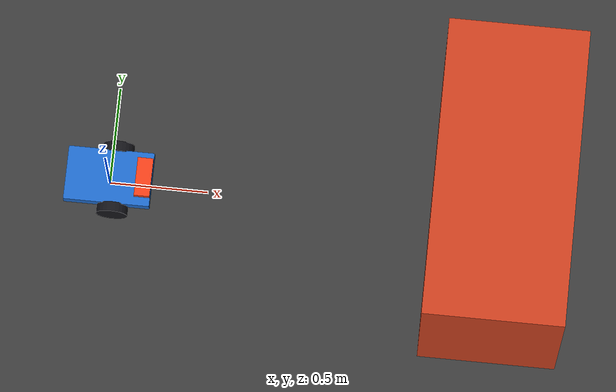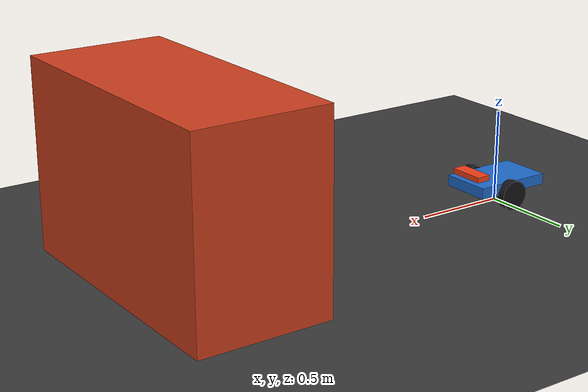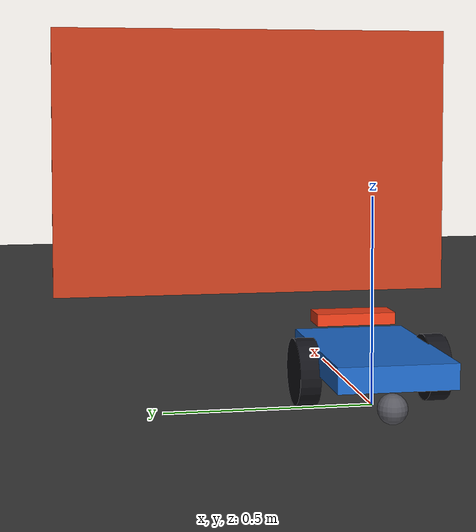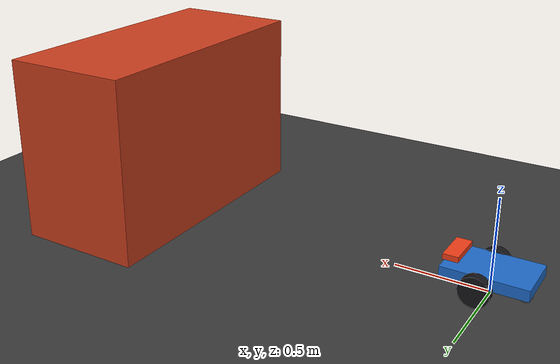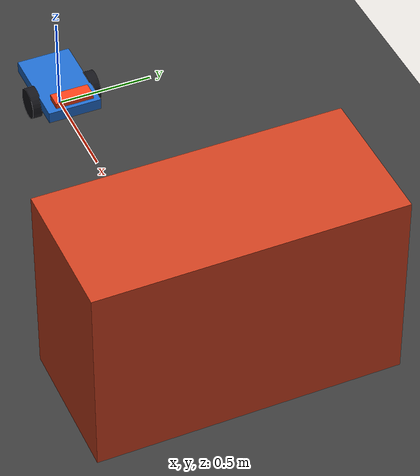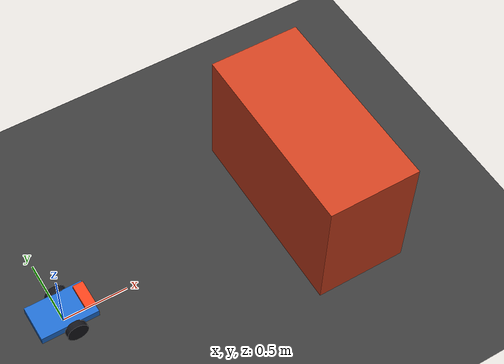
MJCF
<mujoco model="diff_drive_point_goal_obstacle">
    <include file="scene.xml"/>

    <worldbody>
        <body name="static_obstacle_body" pos="2.0 0 0.50">
            <joint
                name="static_obstacle_x"
                type="slide"
                axis="1 0 0"
                damping="1000"
                frictionloss="1000"
            />
            <joint
                name="static_obstacle_y"
                type="slide"
                axis="0 1 0"
                damping="1000"
                frictionloss="1000"
            />
            <geom
                name="static_obstacle"
                type="box"
                size="0.35 0.75 0.50"
                mass="1000"
                rgba="0.80 0.25 0.12 1"
            />
            <site
                name="static_obstacle_contact_site"
                type="box"
                size="0.36 0.76 0.51"
                rgba="0 0 0 0"
            />
        </body>
    </worldbody>

    <sensor>
        <framepos
            name="static_obstacle_position"
            objtype="body"
            objname="static_obstacle_body"
        />
        <touch
            name="static_obstacle_contact"
            site="static_obstacle_contact_site"
        />
    </sensor>
</mujoco>

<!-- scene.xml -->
<mujoco model="diff_drive_point_goal">
    <compiler angle="radian" autolimits="true"/>

    <option
        timestep="0.01"
        gravity="0 0 -9.81"
        integrator="implicitfast"
    />

    <statistic
        center="0 0 0.10"
        extent="2.0"
    />

    <visual>
        <headlight
            ambient="0.4 0.4 0.4"
            diffuse="0.8 0.8 0.8"
            specular="0.1 0.1 0.1"
        />
        <rgba haze="0.15 0.25 0.35 1"/>
        <global azimuth="135" elevation="-25"/>
    </visual>

    <asset>
        <texture
            name="skybox"
            type="skybox"
            builtin="gradient"
            rgb1="0.35 0.50 0.70"
            rgb2="0.05 0.08 0.12"
            width="512"
            height="512"
        />

        <texture
            name="ground_texture"
            type="2d"
            builtin="checker"
            rgb1="0.18 0.18 0.18"
            rgb2="0.28 0.28 0.28"
            width="512"
            height="512"
        />

        <material
            name="ground_material"
            texture="ground_texture"
            texrepeat="4 4"
            texuniform="true"
            reflectance="0.05"
        />
    </asset>

    <default>
        <joint
            damping="0.05"
            armature="0.001"
        />

        <geom
            condim="3"
            friction="1.0 0.005 0.0001"
            solref="0.01 1"
            solimp="0.9 0.95 0.001"
        />

        <default class="wheel">
            <joint
                type="hinge"
                axis="0 1 0"
                damping="0.02"
                armature="0.001"
            />

            <geom
                type="cylinder"
                size="0.08 0.025"
                euler="1.57079632679 0 0"
                mass="0.25"
                friction="1.5 0.005 0.0001"
                rgba="0.08 0.08 0.10 1"
            />
        </default>

        <default class="visual">
            <geom
                contype="0"
                conaffinity="0"
                group="1"
            />
        </default>
    </default>

    <worldbody>
        <light
            pos="0 0 3"
            dir="0 0 -1"
            directional="true"
        />

        <geom
            name="floor"
            type="plane"
            size="0 0 0.1"
            material="ground_material"
        />

        <body
            name="base_link"
            pos="0 0 0.08"
        >
            <freejoint name="base_free_joint"/>

            <geom
                name="chassis"
                type="box"
                pos="0 0 0.035"
                size="0.22 0.14 0.03"
                mass="4.0"
                rgba="0.12 0.42 0.80 1"
            />

            <geom
                class="visual"
                name="front_marker"
                type="box"
                pos="0.18 0 0.10"
                size="0.04 0.10 0.015"
                mass="0.01"
                rgba="0.95 0.25 0.10 1"
            />

            <body
                name="left_wheel"
                pos="0.03 0.16 0"
            >
                <joint
                    class="wheel"
                    name="left_wheel_joint"
                />

                <geom
                    class="wheel"
                    name="left_wheel_geom"
                />
            </body>

            <body
                name="right_wheel"
                pos="0.03 -0.16 0"
            >
                <joint
                    class="wheel"
                    name="right_wheel_joint"
                />

                <geom
                    class="wheel"
                    name="right_wheel_geom"
                />
            </body>

            <geom
                name="rear_caster"
                type="sphere"
                pos="-0.17 0 -0.045"
                size="0.035"
                mass="0.05"
                friction="0.05 0.005 0.0001"
                rgba="0.35 0.35 0.38 1"
            />
        </body>
    </worldbody>

    <actuator>
        <velocity
            name="left_wheel_actuator"
            joint="left_wheel_joint"
            kv="2.0"
            forcelimited="true"
            forcerange="-0.5 0.5"
            ctrlrange="-20 20"
        />

        <velocity
            name="right_wheel_actuator"
            joint="right_wheel_joint"
            kv="2.0"
            forcelimited="true"
            forcerange="-0.5 0.5"
            ctrlrange="-20 20"
        />
    </actuator>

    <keyframe>
        <key
            name="home"
            qpos="0 0 0.08 1 0 0 0 0 0"
        />
    </keyframe>
</mujoco>
